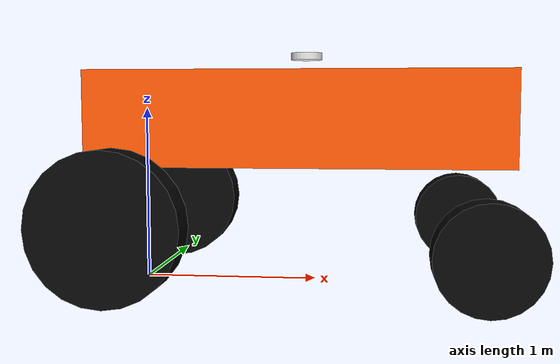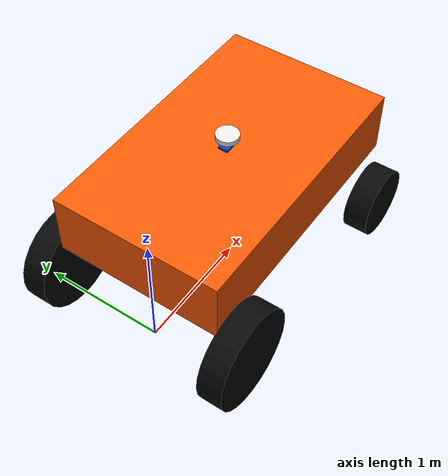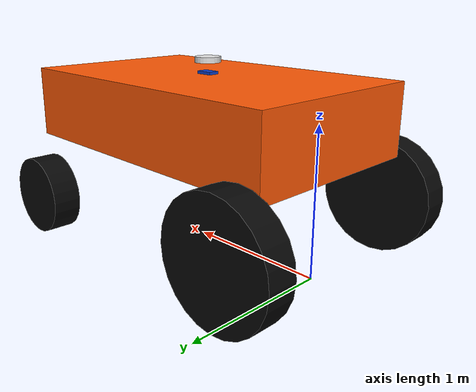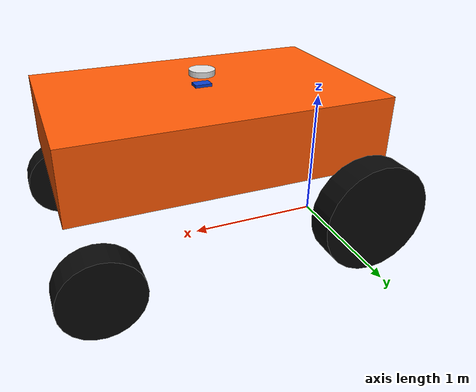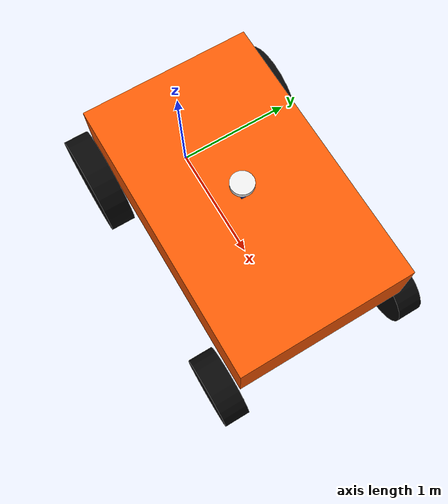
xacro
<?xml version="1.0"?>
<robot name="hege" xmlns:xacro="http://www.ros.org/wiki/xacro">
  <xacro:include filename="$(find hege_description)/urdf/hege_parameters.xacro"/>

  <material name="hege_orange"><color rgba="1.0 0.35 0.02 1.0"/></material>
  <material name="tyre_black"><color rgba="0.03 0.03 0.03 1.0"/></material>
  <material name="sensor_blue"><color rgba="0.05 0.25 0.80 1.0"/></material>
  <material name="gps_white"><color rgba="0.90 0.90 0.90 1.0"/></material>

  <xacro:macro name="box_inertia" params="m x y z cx:=0 cy:=0 cz:=0">
    <inertial>
      <origin xyz="${cx} ${cy} ${cz}" rpy="0 0 0"/>
      <mass value="${m}"/>
      <inertia ixx="${m*(y*y+z*z)/12.0}" ixy="0" ixz="0"
               iyy="${m*(x*x+z*z)/12.0}" iyz="0"
               izz="${m*(x*x+y*y)/12.0}"/>
    </inertial>
  </xacro:macro>

  <xacro:macro name="cylinder_inertia" params="m r h">
    <inertial>
      <mass value="${m}"/>
      <inertia ixx="${m*(3*r*r+h*h)/12.0}" ixy="0" ixz="0"
               iyy="${m*(3*r*r+h*h)/12.0}" iyz="0"
               izz="${m*r*r/2.0}"/>
    </inertial>
  </xacro:macro>

  <xacro:macro name="wheel_surface" params="link">
    <gazebo reference="${link}">
      <mu1>${wheel_mu_longitudinal}</mu1>
      <mu2>${wheel_mu_lateral}</mu2>
      <kp>10000000.0</kp>
      <kd>10000.0</kd>
      <minDepth>0.001</minDepth>
      <maxVel>0.5</maxVel>
    </gazebo>
  </xacro:macro>

  <!-- Ground-projected 2-D navigation frame. -->
  <link name="base_footprint"/>

  <!-- Vehicle reference and aggregate centre of mass, 1.10 m above ground. -->
  <link name="base_link">
    <visual>
      <origin xyz="0 0 ${chassis_visual_z}" rpy="0 0 0"/>
      <geometry><box size="${chassis_length} ${chassis_width} ${chassis_height}"/></geometry>
      <material name="hege_orange"/>
    </visual>
    <collision>
      <origin xyz="0 0 ${chassis_visual_z}" rpy="0 0 0"/>
      <geometry><box size="${chassis_length} ${chassis_width} ${chassis_height}"/></geometry>
    </collision>
    <xacro:box_inertia m="${base_mass}" x="${chassis_length}" y="${chassis_width}"
      z="${chassis_height}" cx="${base_inertial_x}" cz="${base_inertial_z}"/>
  </link>
  <joint name="base_footprint_joint" type="fixed">
    <parent link="base_footprint"/>
    <child link="base_link"/>
    <origin xyz="0.95 0 ${base_height}" rpy="0 0 0"/>
  </joint>

  <xacro:macro name="rear_wheel" params="side y_sign">
    <link name="${side}_rear_wheel">
      <visual><geometry><cylinder radius="${rear_wheel_radius}" length="${wheel_width}"/></geometry><material name="tyre_black"/></visual>
      <collision><geometry><cylinder radius="${rear_wheel_radius}" length="${wheel_width}"/></geometry></collision>
      <xacro:cylinder_inertia m="${rear_wheel_mass}" r="${rear_wheel_radius}" h="${wheel_width}"/>
    </link>
    <joint name="${side}_rear_wheel_joint" type="continuous">
      <parent link="base_link"/><child link="${side}_rear_wheel"/>
      <origin xyz="${rear_axle_x} ${y_sign*rear_track/2.0} ${rear_axle_z}" rpy="-1.57079632679 0 0"/>
      <axis xyz="0 0 1"/>
      <limit effort="${drive_effort_limit}" velocity="${rear_wheel_speed_limit}"/>
      <dynamics damping="0.20" friction="0.10"/>
    </joint>
  </xacro:macro>

  <xacro:rear_wheel side="left" y_sign="1"/>
  <xacro:rear_wheel side="right" y_sign="-1"/>
  <xacro:wheel_surface link="left_rear_wheel"/>
  <xacro:wheel_surface link="right_rear_wheel"/>

  <xacro:macro name="front_wheel" params="side y_sign">
    <link name="${side}_steer_link">
      <inertial><mass value="${steer_link_mass}"/><inertia ixx="0.10" ixy="0" ixz="0" iyy="0.10" iyz="0" izz="0.10"/></inertial>
    </link>
    <joint name="${side}_steer_joint" type="revolute">
      <parent link="base_link"/><child link="${side}_steer_link"/>
      <origin xyz="${front_axle_x} ${y_sign*front_track/2.0} ${front_axle_z}" rpy="0 0 0"/>
      <axis xyz="0 0 1"/>
      <limit lower="${-max_steer}" upper="${max_steer}" effort="${steer_effort_limit}" velocity="${steer_rate_limit}"/>
      <dynamics damping="20.0" friction="10.0"/>
    </joint>
    <link name="${side}_front_wheel">
      <visual><geometry><cylinder radius="${front_wheel_radius}" length="${wheel_width}"/></geometry><material name="tyre_black"/></visual>
      <collision><geometry><cylinder radius="${front_wheel_radius}" length="${wheel_width}"/></geometry></collision>
      <xacro:cylinder_inertia m="${front_wheel_mass}" r="${front_wheel_radius}" h="${wheel_width}"/>
    </link>
    <joint name="${side}_front_wheel_joint" type="continuous">
      <parent link="${side}_steer_link"/><child link="${side}_front_wheel"/>
      <origin xyz="0 0 0" rpy="-1.57079632679 0 0"/>
      <axis xyz="0 0 1"/>
      <limit effort="${drive_effort_limit}" velocity="${rear_wheel_speed_limit}"/>
      <dynamics damping="0.10" friction="0.05"/>
    </joint>
  </xacro:macro>

  <xacro:front_wheel side="left" y_sign="1"/>
  <xacro:front_wheel side="right" y_sign="-1"/>
  <xacro:wheel_surface link="left_front_wheel"/>
  <xacro:wheel_surface link="right_front_wheel"/>

  <link name="imu_link">
    <visual><geometry><box size="0.12 0.08 0.04"/></geometry><material name="sensor_blue"/></visual>
    <inertial><mass value="${sensor_mass}"/><inertia ixx="1e-4" ixy="0" ixz="0" iyy="1e-4" iyz="0" izz="1e-4"/></inertial>
  </link>
  <joint name="imu_joint" type="fixed">
    <parent link="base_link"/><child link="imu_link"/>
    <origin xyz="${imu_x} ${imu_y} ${imu_z}" rpy="0 0 0"/>
  </joint>
  <gazebo reference="imu_joint"><preserveFixedJoint>true</preserveFixedJoint></gazebo>

  <link name="gps_link">
    <visual><geometry><cylinder radius="0.09" length="0.04"/></geometry><material name="gps_white"/></visual>
    <inertial><mass value="${sensor_mass}"/><inertia ixx="1e-4" ixy="0" ixz="0" iyy="1e-4" iyz="0" izz="1e-4"/></inertial>
  </link>
  <joint name="gps_joint" type="fixed">
    <parent link="base_link"/><child link="gps_link"/>
    <origin xyz="${gps_x} ${gps_y} ${gps_z}" rpy="0 0 0"/>
  </joint>
  <gazebo reference="gps_joint"><preserveFixedJoint>true</preserveFixedJoint></gazebo>

  <gazebo reference="imu_link">
    <sensor name="imu_sensor" type="imu">
      <always_on>true</always_on><update_rate>100.0</update_rate><visualize>false</visualize>
      <topic>/imu/data</topic>
      <imu>
        <angular_velocity>
          <x><noise type="gaussian"><mean>0</mean><stddev>${imu_gyro_noise}</stddev><bias_mean>${imu_gyro_bias}</bias_mean><bias_stddev>${imu_gyro_bias}</bias_stddev></noise></x>
          <y><noise type="gaussian"><mean>0</mean><stddev>${imu_gyro_noise}</stddev><bias_mean>${imu_gyro_bias}</bias_mean><bias_stddev>${imu_gyro_bias}</bias_stddev></noise></y>
          <z><noise type="gaussian"><mean>0</mean><stddev>${imu_gyro_noise}</stddev><bias_mean>${imu_gyro_bias}</bias_mean><bias_stddev>${imu_gyro_bias}</bias_stddev></noise></z>
        </angular_velocity>
        <linear_acceleration>
          <x><noise type="gaussian"><mean>0</mean><stddev>${imu_accel_noise}</stddev><bias_mean>${imu_accel_bias}</bias_mean><bias_stddev>${imu_accel_bias}</bias_stddev></noise></x>
          <y><noise type="gaussian"><mean>0</mean><stddev>${imu_accel_noise}</stddev><bias_mean>${imu_accel_bias}</bias_mean><bias_stddev>${imu_accel_bias}</bias_stddev></noise></y>
          <z><noise type="gaussian"><mean>0</mean><stddev>${imu_accel_noise}</stddev><bias_mean>${imu_accel_bias}</bias_mean><bias_stddev>${imu_accel_bias}</bias_stddev></noise></z>
        </linear_acceleration>
      </imu>
    </sensor>
  </gazebo>

  <gazebo reference="gps_link">
    <sensor name="gps_sensor" type="navsat">
      <always_on>true</always_on><update_rate>5.0</update_rate><visualize>false</visualize>
      <topic>/gps/fix</topic>
      <navsat><position_sensing>
        <horizontal><noise type="gaussian"><mean>0</mean><stddev>${gps_horizontal_stddev_m/metres_per_latitude_degree}</stddev></noise></horizontal>
        <vertical><noise type="gaussian"><mean>0</mean><stddev>${gps_vertical_stddev_m}</stddev></noise></vertical>
      </position_sensing></navsat>
    </sensor>
  </gazebo>

  <gazebo>
    <plugin filename="gz-sim-odometry-publisher-system"
            name="gz::sim::systems::OdometryPublisher">
      <odom_frame>world</odom_frame>
      <robot_base_frame>base_footprint</robot_base_frame>
      <dimensions>3</dimensions>
      <odom_publish_frequency>50</odom_publish_frequency>
      <odom_topic>/hege/ground_truth/odom</odom_topic>
      <odom_covariance_topic>/hege/ground_truth/odom_with_covariance</odom_covariance_topic>
      <tf_topic>/hege/ground_truth/pose</tf_topic>
    </plugin>
  </gazebo>

  <ros2_control name="HegeGazeboSystem" type="system">
    <hardware><plugin>gz_ros2_control/GazeboSimSystem</plugin></hardware>
    <joint name="left_rear_wheel_joint">
      <command_interface name="velocity"><param name="min">${-rear_wheel_speed_limit}</param><param name="max">${rear_wheel_speed_limit}</param></command_interface>
      <state_interface name="position"/><state_interface name="velocity"/>
    </joint>
    <joint name="right_rear_wheel_joint">
      <command_interface name="velocity"><param name="min">${-rear_wheel_speed_limit}</param><param name="max">${rear_wheel_speed_limit}</param></command_interface>
      <state_interface name="position"/><state_interface name="velocity"/>
    </joint>
    <joint name="left_steer_joint">
      <command_interface name="position"><param name="min">${-max_steer}</param><param name="max">${max_steer}</param></command_interface>
      <state_interface name="position"/><state_interface name="velocity"/>
    </joint>
    <joint name="right_steer_joint">
      <command_interface name="position"><param name="min">${-max_steer}</param><param name="max">${max_steer}</param></command_interface>
      <state_interface name="position"/><state_interface name="velocity"/>
    </joint>
    <joint name="left_front_wheel_joint"><state_interface name="position"/><state_interface name="velocity"/></joint>
    <joint name="right_front_wheel_joint"><state_interface name="position"/><state_interface name="velocity"/></joint>
  </ros2_control>

  <gazebo>
    <plugin filename="gz_ros2_control-system" name="gz_ros2_control::GazeboSimROS2ControlPlugin">
      <robot_param>robot_description</robot_param>
      <robot_param_node>robot_state_publisher</robot_param_node>
      <parameters>$(find hege_description)/config/controllers.yaml</parameters>
    </plugin>
  </gazebo>
</robot>

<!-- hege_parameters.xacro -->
<robot xmlns:xacro="http://www.ros.org/wiki/xacro">

  <!-- VERIFIED MEASUREMENTS, metres/radians/kg. -->
  <xacro:property name="wheelbase" value="1.90"/>
  <xacro:property name="front_track" value="1.55"/>
  <xacro:property name="rear_track" value="1.55"/>
  <xacro:property name="front_wheel_radius" value="0.28"/>
  <xacro:property name="rear_wheel_radius" value="0.40"/>
  <xacro:property name="base_height" value="1.10"/>
  <xacro:property name="imu_height" value="1.20"/>
  <xacro:property name="gps_height" value="1.30"/>
  <xacro:property name="total_mass" value="1300.0"/>
  <xacro:property name="max_steer" value="0.610865238"/> <!-- 35 deg -->

  <!-- All three frames currently share the same measured vertical axis. -->
  <xacro:property name="imu_x" value="0.0"/>
  <xacro:property name="imu_y" value="0.0"/>
  <xacro:property name="imu_z" value="${imu_height-base_height}"/>
  <xacro:property name="gps_x" value="0.0"/>
  <xacro:property name="gps_y" value="0.0"/>
  <xacro:property name="gps_z" value="${gps_height-base_height}"/>

  <!-- APPROXIMATIONS: replace when CAD/scale measurements are available. -->
  <xacro:property name="chassis_length" value="2.20"/>
  <xacro:property name="chassis_width" value="1.35"/>
  <xacro:property name="chassis_height" value="0.50"/>
  <xacro:property name="chassis_visual_z" value="-0.15"/>
  <xacro:property name="wheel_width" value="0.20"/>
  <xacro:property name="rear_wheel_mass" value="35.0"/>
  <xacro:property name="front_wheel_mass" value="20.0"/>
  <xacro:property name="steer_link_mass" value="8.0"/>
  <xacro:property name="sensor_mass" value="0.10"/>
  <xacro:property name="base_mass"
    value="${total_mass-2*rear_wheel_mass-2*front_wheel_mass-2*steer_link_mass-2*sensor_mass}"/>

  <!-- Axle centres relative to base_link. Both tyres touch z=0. -->
  <xacro:property name="front_axle_x" value="${wheelbase/2.0}"/>
  <xacro:property name="rear_axle_x" value="${-wheelbase/2.0}"/>
  <xacro:property name="front_axle_z" value="${front_wheel_radius-base_height}"/>
  <xacro:property name="rear_axle_z" value="${rear_wheel_radius-base_height}"/>

  <!-- Make the aggregate model CoM coincide with base_link despite the
       approximate separate wheel/knuckle masses. -->
  <xacro:property name="moving_mass_moment_x"
    value="${2*rear_wheel_mass*rear_axle_x + 2*(front_wheel_mass+steer_link_mass)*front_axle_x}"/>
  <xacro:property name="moving_mass_moment_z"
    value="${2*rear_wheel_mass*rear_axle_z + 2*(front_wheel_mass+steer_link_mass)*front_axle_z + sensor_mass*imu_z + sensor_mass*gps_z}"/>
  <xacro:property name="base_inertial_x" value="${-moving_mass_moment_x/base_mass}"/>
  <xacro:property name="base_inertial_z" value="${-moving_mass_moment_z/base_mass}"/>

  <!-- PHYSICS STARTING VALUES: calibrate against measured real tests. -->
  <xacro:property name="steer_effort_limit" value="5000.0"/>
  <xacro:property name="steer_rate_limit" value="0.60"/> <!-- rad/s -->
  <xacro:property name="drive_effort_limit" value="3000.0"/>
  <xacro:property name="max_linear_speed" value="0.30"/>
  <xacro:property name="rear_wheel_speed_limit" value="${max_linear_speed/rear_wheel_radius}"/>
  <xacro:property name="wheel_mu_longitudinal" value="0.8"/>
  <xacro:property name="wheel_mu_lateral" value="0.8"/>
  <xacro:property name="wheel_slip" value="0.02"/>

  <xacro:property name="gps_horizontal_stddev_m" value="2.0"/>
  <xacro:property name="gps_vertical_stddev_m" value="4.0"/>
  <xacro:property name="metres_per_latitude_degree" value="111195.0"/>
  <xacro:property name="imu_gyro_noise" value="2.0e-4"/>
  <xacro:property name="imu_accel_noise" value="1.7e-2"/>
  <xacro:property name="imu_gyro_bias" value="7.5e-6"/>
  <xacro:property name="imu_accel_bias" value="0.05"/>
</robot>
